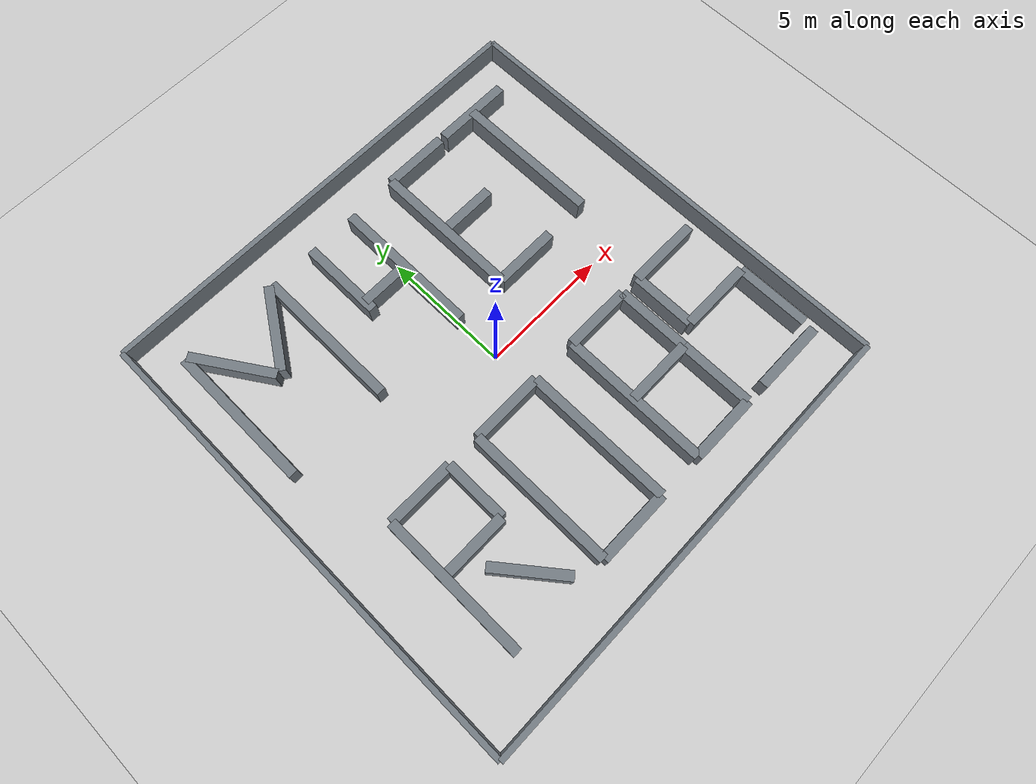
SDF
<?xml version='1.0' encoding='utf-8'?>
<sdf version="1.7">
  <world name="default">
    <light name="sun" type="directional">
      <cast_shadows>0</cast_shadows>
      <pose>0 0 10 0 0 0</pose>
      <diffuse>0.8 0.8 0.8 1</diffuse>
      <specular>0.2 0.2 0.2 1</specular>
      <attenuation>
        <range>1000</range>
        <constant>0.9</constant>
        <linear>0.01</linear>
        <quadratic>0.001</quadratic>
      </attenuation>
      <direction>-0.5 0.1 -0.9</direction>
    </light>
    <model name="ground_plane">
      <static>1</static>
      <link name="link">
        <collision name="collision">
          <geometry>
            <plane>
              <normal>0 0 1</normal>
              <size>100 100</size>
            </plane>
          </geometry>
        </collision>
        <visual name="visual">
          <cast_shadows>0</cast_shadows>
          <geometry>
            <plane>
              <normal>0 0 1</normal>
              <size>100 100</size>
            </plane>
          </geometry>
          <material>
            <script>
              <uri>file://media/materials/scripts/gazebo.material</uri>
              <name>Gazebo/Grey</name>
            </script>
          </material>
        </visual>
      </link>
    </model>
    <gravity>0 0 -9.8</gravity>
    <magnetic_field>6e-06 2.3e-05 -4.2e-05</magnetic_field>
    <atmosphere type="adiabatic"/>
    <physics type="ode">
      <max_step_size>0.001</max_step_size>
      <real_time_factor>1</real_time_factor>
      <real_time_update_rate>1000</real_time_update_rate>
    </physics>
    <scene>
      <ambient>0.4 0.4 0.4 1</ambient>
      <background>0.7 0.7 0.7 1</background>
      <shadows>0</shadows>
    </scene>
    <gui fullscreen="0">
      <camera name="user_camera">
        <pose>0 0 28 0 1.55 0</pose>
        <view_controller>orbit</view_controller>
        <projection_type>perspective</projection_type>
      </camera>
    </gui>

    <!-- Outer boundary (expanded slightly for extra letter spacing) -->
    <model name="letter_wall_000">
      <static>1</static>
      <pose>0.000000 -9.000000 0.450000 0 0 0</pose>
      <link name="link">
        <collision name="collision"><geometry><box><size>18.000000 0.200 0.900000</size></box></geometry></collision>
        <visual name="visual">
          <cast_shadows>0</cast_shadows>
          <geometry><box><size>18.000000 0.200 0.900000</size></box></geometry>
          <material><ambient>0.32 0.34 0.38 1</ambient><diffuse>0.45 0.48 0.51 1</diffuse><specular>0.08 0.08 0.08 1</specular></material>
        </visual>
      </link>
    </model>
    <model name="letter_wall_001">
      <static>1</static>
      <pose>9.000000 0.000000 0.450000 0 0 1.5707963</pose>
      <link name="link">
        <collision name="collision"><geometry><box><size>18.000000 0.200 0.900000</size></box></geometry></collision>
        <visual name="visual">
          <cast_shadows>0</cast_shadows>
          <geometry><box><size>18.000000 0.200 0.900000</size></box></geometry>
          <material><ambient>0.32 0.34 0.38 1</ambient><diffuse>0.45 0.48 0.51 1</diffuse><specular>0.08 0.08 0.08 1</specular></material>
        </visual>
      </link>
    </model>
    <model name="letter_wall_002">
      <static>1</static>
      <pose>0.000000 9.000000 0.450000 0 0 3.1415927</pose>
      <link name="link">
        <collision name="collision"><geometry><box><size>18.000000 0.200 0.900000</size></box></geometry></collision>
        <visual name="visual">
          <cast_shadows>0</cast_shadows>
          <geometry><box><size>18.000000 0.200 0.900000</size></box></geometry>
          <material><ambient>0.32 0.34 0.38 1</ambient><diffuse>0.45 0.48 0.51 1</diffuse><specular>0.08 0.08 0.08 1</specular></material>
        </visual>
      </link>
    </model>
    <model name="letter_wall_003">
      <static>1</static>
      <pose>-9.000000 0.000000 0.450000 0 0 -1.5707963</pose>
      <link name="link">
        <collision name="collision"><geometry><box><size>18.000000 0.200 0.900000</size></box></geometry></collision>
        <visual name="visual">
          <cast_shadows>0</cast_shadows>
          <geometry><box><size>18.000000 0.200 0.900000</size></box></geometry>
          <material><ambient>0.32 0.34 0.38 1</ambient><diffuse>0.45 0.48 0.51 1</diffuse><specular>0.08 0.08 0.08 1</specular></material>
        </visual>
      </link>
    </model>

    <!-- Letter M (left, upper) — wider strokes, shifted left for spacing -->
    <model name="letter_wall_004">
      <static>1</static>
      <pose>-7.650000 4.500000 0.450000 0 0 1.5707963</pose>
      <link name="link">
        <collision name="collision"><geometry><box><size>5.600000 0.360 0.900000</size></box></geometry></collision>
        <visual name="visual">
          <cast_shadows>0</cast_shadows>
          <geometry><box><size>5.600000 0.360 0.900000</size></box></geometry>
          <material><ambient>0.32 0.34 0.38 1</ambient><diffuse>0.45 0.48 0.51 1</diffuse><specular>0.08 0.08 0.08 1</specular></material>
        </visual>
      </link>
    </model>
    <model name="letter_wall_005">
      <static>1</static>
      <pose>-6.650000 6.000000 0.450000 0 0 -0.9918982</pose>
      <link name="link">
        <collision name="collision"><geometry><box><size>3.200000 0.360 0.900000</size></box></geometry></collision>
        <visual name="visual">
          <cast_shadows>0</cast_shadows>
          <geometry><box><size>3.200000 0.360 0.900000</size></box></geometry>
          <material><ambient>0.32 0.34 0.38 1</ambient><diffuse>0.45 0.48 0.51 1</diffuse><specular>0.08 0.08 0.08 1</specular></material>
        </visual>
      </link>
    </model>
    <model name="letter_wall_006">
      <static>1</static>
      <pose>-4.750000 6.000000 0.450000 0 0 0.9918982</pose>
      <link name="link">
        <collision name="collision"><geometry><box><size>3.200000 0.360 0.900000</size></box></geometry></collision>
        <visual name="visual">
          <cast_shadows>0</cast_shadows>
          <geometry><box><size>3.200000 0.360 0.900000</size></box></geometry>
          <material><ambient>0.32 0.34 0.38 1</ambient><diffuse>0.45 0.48 0.51 1</diffuse><specular>0.08 0.08 0.08 1</specular></material>
        </visual>
      </link>
    </model>
    <model name="letter_wall_007">
      <static>1</static>
      <pose>-3.750000 4.500000 0.450000 0 0 -1.5707963</pose>
      <link name="link">
        <collision name="collision"><geometry><box><size>5.600000 0.360 0.900000</size></box></geometry></collision>
        <visual name="visual">
          <cast_shadows>0</cast_shadows>
          <geometry><box><size>5.600000 0.360 0.900000</size></box></geometry>
          <material><ambient>0.32 0.34 0.38 1</ambient><diffuse>0.45 0.48 0.51 1</diffuse><specular>0.08 0.08 0.08 1</specular></material>
        </visual>
      </link>
    </model>

    <!-- Digit 4 (upper middle) — NO horizontal overhang: crossbar ends flush at the vertical stem -->
    <!-- left angled / vertical of 4 -->
    <model name="letter_wall_008">
      <static>1</static>
      <pose>-1.900000 5.700000 0.450000 0 0 1.5707963</pose>
      <link name="link">
        <collision name="collision"><geometry><box><size>3.200000 0.360 0.900000</size></box></geometry></collision>
        <visual name="visual">
          <cast_shadows>0</cast_shadows>
          <geometry><box><size>3.200000 0.360 0.900000</size></box></geometry>
          <material><ambient>0.32 0.34 0.38 1</ambient><diffuse>0.45 0.48 0.51 1</diffuse><specular>0.08 0.08 0.08 1</specular></material>
        </visual>
      </link>
    </model>
    <!-- crossbar: short, ends at stem (no overhang past right vertical) -->
    <model name="letter_wall_009">
      <static>1</static>
      <pose>-0.950000 4.500000 0.450000 0 0 0</pose>
      <link name="link">
        <collision name="collision"><geometry><box><size>1.900000 0.360 0.900000</size></box></geometry></collision>
        <visual name="visual">
          <cast_shadows>0</cast_shadows>
          <geometry><box><size>1.900000 0.360 0.900000</size></box></geometry>
          <material><ambient>0.32 0.34 0.38 1</ambient><diffuse>0.45 0.48 0.51 1</diffuse><specular>0.08 0.08 0.08 1</specular></material>
        </visual>
      </link>
    </model>
    <!-- right vertical stem of 4 (full height) -->
    <model name="letter_wall_010">
      <static>1</static>
      <pose>0.000000 4.500000 0.450000 0 0 -1.5707963</pose>
      <link name="link">
        <collision name="collision"><geometry><box><size>5.600000 0.360 0.900000</size></box></geometry></collision>
        <visual name="visual">
          <cast_shadows>0</cast_shadows>
          <geometry><box><size>5.600000 0.360 0.900000</size></box></geometry>
          <material><ambient>0.32 0.34 0.38 1</ambient><diffuse>0.45 0.48 0.51 1</diffuse><specular>0.08 0.08 0.08 1</specular></material>
        </visual>
      </link>
    </model>

    <!-- Letter E (upper right of centre) -->
    <model name="letter_wall_011">
      <static>1</static>
      <pose>2.000000 4.500000 0.450000 0 0 -1.5707963</pose>
      <link name="link">
        <collision name="collision"><geometry><box><size>5.600000 0.360 0.900000</size></box></geometry></collision>
        <visual name="visual">
          <cast_shadows>0</cast_shadows>
          <geometry><box><size>5.600000 0.360 0.900000</size></box></geometry>
          <material><ambient>0.32 0.34 0.38 1</ambient><diffuse>0.45 0.48 0.51 1</diffuse><specular>0.08 0.08 0.08 1</specular></material>
        </visual>
      </link>
    </model>
    <model name="letter_wall_012">
      <static>1</static>
      <pose>3.250000 7.300000 0.450000 0 0 0</pose>
      <link name="link">
        <collision name="collision"><geometry><box><size>2.500000 0.360 0.900000</size></box></geometry></collision>
        <visual name="visual">
          <cast_shadows>0</cast_shadows>
          <geometry><box><size>2.500000 0.360 0.900000</size></box></geometry>
          <material><ambient>0.32 0.34 0.38 1</ambient><diffuse>0.45 0.48 0.51 1</diffuse><specular>0.08 0.08 0.08 1</specular></material>
        </visual>
      </link>
    </model>
    <model name="letter_wall_013">
      <static>1</static>
      <pose>3.100000 4.500000 0.450000 0 0 0</pose>
      <link name="link">
        <collision name="collision"><geometry><box><size>2.200000 0.360 0.900000</size></box></geometry></collision>
        <visual name="visual">
          <cast_shadows>0</cast_shadows>
          <geometry><box><size>2.200000 0.360 0.900000</size></box></geometry>
          <material><ambient>0.32 0.34 0.38 1</ambient><diffuse>0.45 0.48 0.51 1</diffuse><specular>0.08 0.08 0.08 1</specular></material>
        </visual>
      </link>
    </model>
    <model name="letter_wall_014">
      <static>1</static>
      <pose>3.250000 1.700000 0.450000 0 0 0</pose>
      <link name="link">
        <collision name="collision"><geometry><box><size>2.500000 0.360 0.900000</size></box></geometry></collision>
        <visual name="visual">
          <cast_shadows>0</cast_shadows>
          <geometry><box><size>2.500000 0.360 0.900000</size></box></geometry>
          <material><ambient>0.32 0.34 0.38 1</ambient><diffuse>0.45 0.48 0.51 1</diffuse><specular>0.08 0.08 0.08 1</specular></material>
        </visual>
      </link>
    </model>

    <!-- Letter T (far upper right) -->
    <model name="letter_wall_015">
      <static>1</static>
      <pose>6.200000 7.300000 0.450000 0 0 0</pose>
      <link name="link">
        <collision name="collision"><geometry><box><size>3.000000 0.360 0.900000</size></box></geometry></collision>
        <visual name="visual">
          <cast_shadows>0</cast_shadows>
          <geometry><box><size>3.000000 0.360 0.900000</size></box></geometry>
          <material><ambient>0.32 0.34 0.38 1</ambient><diffuse>0.45 0.48 0.51 1</diffuse><specular>0.08 0.08 0.08 1</specular></material>
        </visual>
      </link>
    </model>
    <model name="letter_wall_016">
      <static>1</static>
      <pose>6.200000 4.500000 0.450000 0 0 -1.5707963</pose>
      <link name="link">
        <collision name="collision"><geometry><box><size>5.600000 0.360 0.900000</size></box></geometry></collision>
        <visual name="visual">
          <cast_shadows>0</cast_shadows>
          <geometry><box><size>5.600000 0.360 0.900000</size></box></geometry>
          <material><ambient>0.32 0.34 0.38 1</ambient><diffuse>0.45 0.48 0.51 1</diffuse><specular>0.08 0.08 0.08 1</specular></material>
        </visual>
      </link>
    </model>

    <!-- Letter R (lower left) -->
    <model name="letter_wall_017">
      <static>1</static>
      <pose>-6.500000 -4.500000 0.450000 0 0 1.5707963</pose>
      <link name="link">
        <collision name="collision"><geometry><box><size>5.600000 0.360 0.900000</size></box></geometry></collision>
        <visual name="visual">
          <cast_shadows>0</cast_shadows>
          <geometry><box><size>5.600000 0.360 0.900000</size></box></geometry>
          <material><ambient>0.32 0.34 0.38 1</ambient><diffuse>0.45 0.48 0.51 1</diffuse><specular>0.08 0.08 0.08 1</specular></material>
        </visual>
      </link>
    </model>
    <model name="letter_wall_018">
      <static>1</static>
      <pose>-5.200000 -1.700000 0.450000 0 0 0</pose>
      <link name="link">
        <collision name="collision"><geometry><box><size>2.600000 0.360 0.900000</size></box></geometry></collision>
        <visual name="visual">
          <cast_shadows>0</cast_shadows>
          <geometry><box><size>2.600000 0.360 0.900000</size></box></geometry>
          <material><ambient>0.32 0.34 0.38 1</ambient><diffuse>0.45 0.48 0.51 1</diffuse><specular>0.08 0.08 0.08 1</specular></material>
        </visual>
      </link>
    </model>
    <model name="letter_wall_019">
      <static>1</static>
      <pose>-3.900000 -2.900000 0.450000 0 0 -1.5707963</pose>
      <link name="link">
        <collision name="collision"><geometry><box><size>2.400000 0.360 0.900000</size></box></geometry></collision>
        <visual name="visual">
          <cast_shadows>0</cast_shadows>
          <geometry><box><size>2.400000 0.360 0.900000</size></box></geometry>
          <material><ambient>0.32 0.34 0.38 1</ambient><diffuse>0.45 0.48 0.51 1</diffuse><specular>0.08 0.08 0.08 1</specular></material>
        </visual>
      </link>
    </model>
    <model name="letter_wall_020">
      <static>1</static>
      <pose>-5.200000 -4.100000 0.450000 0 0 0</pose>
      <link name="link">
        <collision name="collision"><geometry><box><size>2.600000 0.360 0.900000</size></box></geometry></collision>
        <visual name="visual">
          <cast_shadows>0</cast_shadows>
          <geometry><box><size>2.600000 0.360 0.900000</size></box></geometry>
          <material><ambient>0.32 0.34 0.38 1</ambient><diffuse>0.45 0.48 0.51 1</diffuse><specular>0.08 0.08 0.08 1</specular></material>
        </visual>
      </link>
    </model>
    <model name="letter_wall_021">
      <static>1</static>
      <pose>-4.500000 -5.900000 0.450000 0 0 -0.9000000</pose>
      <link name="link">
        <collision name="collision"><geometry><box><size>2.800000 0.360 0.900000</size></box></geometry></collision>
        <visual name="visual">
          <cast_shadows>0</cast_shadows>
          <geometry><box><size>2.800000 0.360 0.900000</size></box></geometry>
          <material><ambient>0.32 0.34 0.38 1</ambient><diffuse>0.45 0.48 0.51 1</diffuse><specular>0.08 0.08 0.08 1</specular></material>
        </visual>
      </link>
    </model>

    <!-- Letter O (lower centre-left) -->
    <model name="letter_wall_022">
      <static>1</static>
      <pose>-1.200000 -1.700000 0.450000 0 0 0</pose>
      <link name="link">
        <collision name="collision"><geometry><box><size>2.800000 0.360 0.900000</size></box></geometry></collision>
        <visual name="visual">
          <cast_shadows>0</cast_shadows>
          <geometry><box><size>2.800000 0.360 0.900000</size></box></geometry>
          <material><ambient>0.32 0.34 0.38 1</ambient><diffuse>0.45 0.48 0.51 1</diffuse><specular>0.08 0.08 0.08 1</specular></material>
        </visual>
      </link>
    </model>
    <model name="letter_wall_023">
      <static>1</static>
      <pose>0.200000 -4.500000 0.450000 0 0 -1.5707963</pose>
      <link name="link">
        <collision name="collision"><geometry><box><size>5.600000 0.360 0.900000</size></box></geometry></collision>
        <visual name="visual">
          <cast_shadows>0</cast_shadows>
          <geometry><box><size>5.600000 0.360 0.900000</size></box></geometry>
          <material><ambient>0.32 0.34 0.38 1</ambient><diffuse>0.45 0.48 0.51 1</diffuse><specular>0.08 0.08 0.08 1</specular></material>
        </visual>
      </link>
    </model>
    <model name="letter_wall_024">
      <static>1</static>
      <pose>-1.200000 -7.300000 0.450000 0 0 0</pose>
      <link name="link">
        <collision name="collision"><geometry><box><size>2.800000 0.360 0.900000</size></box></geometry></collision>
        <visual name="visual">
          <cast_shadows>0</cast_shadows>
          <geometry><box><size>2.800000 0.360 0.900000</size></box></geometry>
          <material><ambient>0.32 0.34 0.38 1</ambient><diffuse>0.45 0.48 0.51 1</diffuse><specular>0.08 0.08 0.08 1</specular></material>
        </visual>
      </link>
    </model>
    <model name="letter_wall_025">
      <static>1</static>
      <pose>-2.600000 -4.500000 0.450000 0 0 1.5707963</pose>
      <link name="link">
        <collision name="collision"><geometry><box><size>5.600000 0.360 0.900000</size></box></geometry></collision>
        <visual name="visual">
          <cast_shadows>0</cast_shadows>
          <geometry><box><size>5.600000 0.360 0.900000</size></box></geometry>
          <material><ambient>0.32 0.34 0.38 1</ambient><diffuse>0.45 0.48 0.51 1</diffuse><specular>0.08 0.08 0.08 1</specular></material>
        </visual>
      </link>
    </model>

    <!-- Letter B (lower centre-right) -->
    <model name="letter_wall_026">
      <static>1</static>
      <pose>2.000000 -4.500000 0.450000 0 0 1.5707963</pose>
      <link name="link">
        <collision name="collision"><geometry><box><size>5.600000 0.360 0.900000</size></box></geometry></collision>
        <visual name="visual">
          <cast_shadows>0</cast_shadows>
          <geometry><box><size>5.600000 0.360 0.900000</size></box></geometry>
          <material><ambient>0.32 0.34 0.38 1</ambient><diffuse>0.45 0.48 0.51 1</diffuse><specular>0.08 0.08 0.08 1</specular></material>
        </visual>
      </link>
    </model>
    <model name="letter_wall_027">
      <static>1</static>
      <pose>3.300000 -1.700000 0.450000 0 0 0</pose>
      <link name="link">
        <collision name="collision"><geometry><box><size>2.600000 0.360 0.900000</size></box></geometry></collision>
        <visual name="visual">
          <cast_shadows>0</cast_shadows>
          <geometry><box><size>2.600000 0.360 0.900000</size></box></geometry>
          <material><ambient>0.32 0.34 0.38 1</ambient><diffuse>0.45 0.48 0.51 1</diffuse><specular>0.08 0.08 0.08 1</specular></material>
        </visual>
      </link>
    </model>
    <model name="letter_wall_028">
      <static>1</static>
      <pose>4.600000 -3.100000 0.450000 0 0 -1.5707963</pose>
      <link name="link">
        <collision name="collision"><geometry><box><size>2.800000 0.360 0.900000</size></box></geometry></collision>
        <visual name="visual">
          <cast_shadows>0</cast_shadows>
          <geometry><box><size>2.800000 0.360 0.900000</size></box></geometry>
          <material><ambient>0.32 0.34 0.38 1</ambient><diffuse>0.45 0.48 0.51 1</diffuse><specular>0.08 0.08 0.08 1</specular></material>
        </visual>
      </link>
    </model>
    <model name="letter_wall_029">
      <static>1</static>
      <pose>3.300000 -4.500000 0.450000 0 0 0</pose>
      <link name="link">
        <collision name="collision"><geometry><box><size>2.600000 0.360 0.900000</size></box></geometry></collision>
        <visual name="visual">
          <cast_shadows>0</cast_shadows>
          <geometry><box><size>2.600000 0.360 0.900000</size></box></geometry>
          <material><ambient>0.32 0.34 0.38 1</ambient><diffuse>0.45 0.48 0.51 1</diffuse><specular>0.08 0.08 0.08 1</specular></material>
        </visual>
      </link>
    </model>
    <model name="letter_wall_030">
      <static>1</static>
      <pose>4.600000 -5.900000 0.450000 0 0 -1.5707963</pose>
      <link name="link">
        <collision name="collision"><geometry><box><size>2.800000 0.360 0.900000</size></box></geometry></collision>
        <visual name="visual">
          <cast_shadows>0</cast_shadows>
          <geometry><box><size>2.800000 0.360 0.900000</size></box></geometry>
          <material><ambient>0.32 0.34 0.38 1</ambient><diffuse>0.45 0.48 0.51 1</diffuse><specular>0.08 0.08 0.08 1</specular></material>
        </visual>
      </link>
    </model>
    <model name="letter_wall_031">
      <static>1</static>
      <pose>3.300000 -7.300000 0.450000 0 0 0</pose>
      <link name="link">
        <collision name="collision"><geometry><box><size>2.600000 0.360 0.900000</size></box></geometry></collision>
        <visual name="visual">
          <cast_shadows>0</cast_shadows>
          <geometry><box><size>2.600000 0.360 0.900000</size></box></geometry>
          <material><ambient>0.32 0.34 0.38 1</ambient><diffuse>0.45 0.48 0.51 1</diffuse><specular>0.08 0.08 0.08 1</specular></material>
        </visual>
      </link>
    </model>

    <!-- Letter S (lower right) -->
    <model name="letter_wall_032">
      <static>1</static>
      <pose>6.800000 -1.700000 0.450000 0 0 0</pose>
      <link name="link">
        <collision name="collision"><geometry><box><size>2.800000 0.360 0.900000</size></box></geometry></collision>
        <visual name="visual">
          <cast_shadows>0</cast_shadows>
          <geometry><box><size>2.800000 0.360 0.900000</size></box></geometry>
          <material><ambient>0.32 0.34 0.38 1</ambient><diffuse>0.45 0.48 0.51 1</diffuse><specular>0.08 0.08 0.08 1</specular></material>
        </visual>
      </link>
    </model>
    <model name="letter_wall_033">
      <static>1</static>
      <pose>5.400000 -2.900000 0.450000 0 0 1.5707963</pose>
      <link name="link">
        <collision name="collision"><geometry><box><size>2.400000 0.360 0.900000</size></box></geometry></collision>
        <visual name="visual">
          <cast_shadows>0</cast_shadows>
          <geometry><box><size>2.400000 0.360 0.900000</size></box></geometry>
          <material><ambient>0.32 0.34 0.38 1</ambient><diffuse>0.45 0.48 0.51 1</diffuse><specular>0.08 0.08 0.08 1</specular></material>
        </visual>
      </link>
    </model>
    <model name="letter_wall_034">
      <static>1</static>
      <pose>6.800000 -4.100000 0.450000 0 0 0</pose>
      <link name="link">
        <collision name="collision"><geometry><box><size>2.800000 0.360 0.900000</size></box></geometry></collision>
        <visual name="visual">
          <cast_shadows>0</cast_shadows>
          <geometry><box><size>2.800000 0.360 0.900000</size></box></geometry>
          <material><ambient>0.32 0.34 0.38 1</ambient><diffuse>0.45 0.48 0.51 1</diffuse><specular>0.08 0.08 0.08 1</specular></material>
        </visual>
      </link>
    </model>
    <model name="letter_wall_035">
      <static>1</static>
      <pose>8.200000 -5.500000 0.450000 0 0 -1.5707963</pose>
      <link name="link">
        <collision name="collision"><geometry><box><size>2.800000 0.360 0.900000</size></box></geometry></collision>
        <visual name="visual">
          <cast_shadows>0</cast_shadows>
          <geometry><box><size>2.800000 0.360 0.900000</size></box></geometry>
          <material><ambient>0.32 0.34 0.38 1</ambient><diffuse>0.45 0.48 0.51 1</diffuse><specular>0.08 0.08 0.08 1</specular></material>
        </visual>
      </link>
    </model>
    <model name="letter_wall_036">
      <static>1</static>
      <pose>6.800000 -7.300000 0.450000 0 0 0</pose>
      <link name="link">
        <collision name="collision"><geometry><box><size>2.800000 0.360 0.900000</size></box></geometry></collision>
        <visual name="visual">
          <cast_shadows>0</cast_shadows>
          <geometry><box><size>2.800000 0.360 0.900000</size></box></geometry>
          <material><ambient>0.32 0.34 0.38 1</ambient><diffuse>0.45 0.48 0.51 1</diffuse><specular>0.08 0.08 0.08 1</specular></material>
        </visual>
      </link>
    </model>

  </world>
</sdf>
